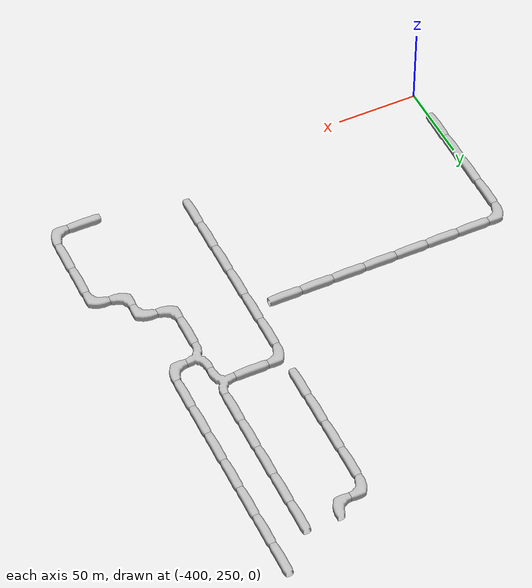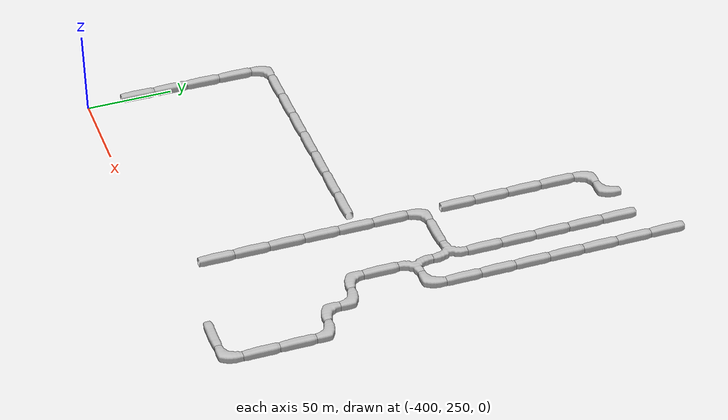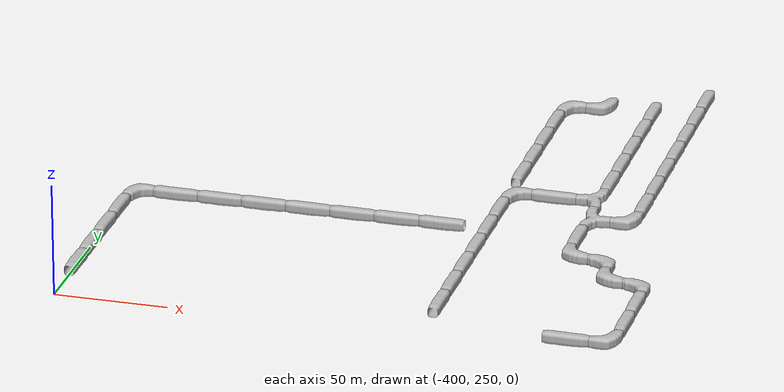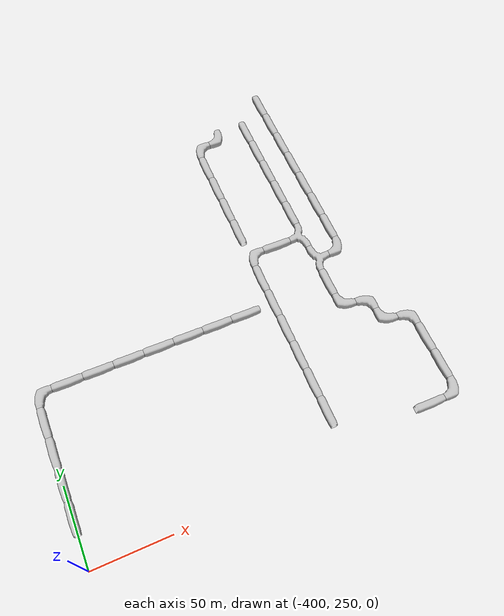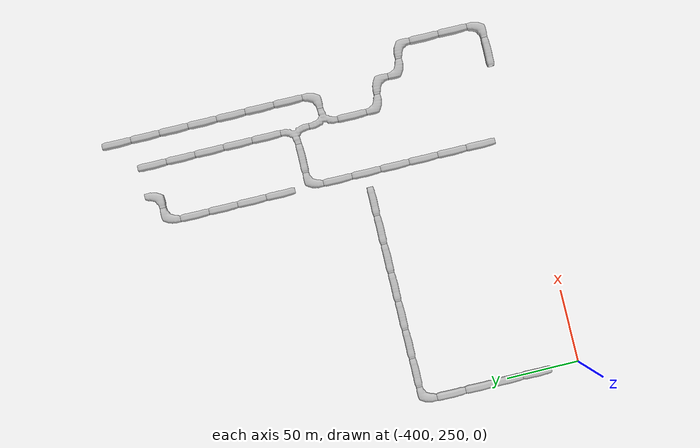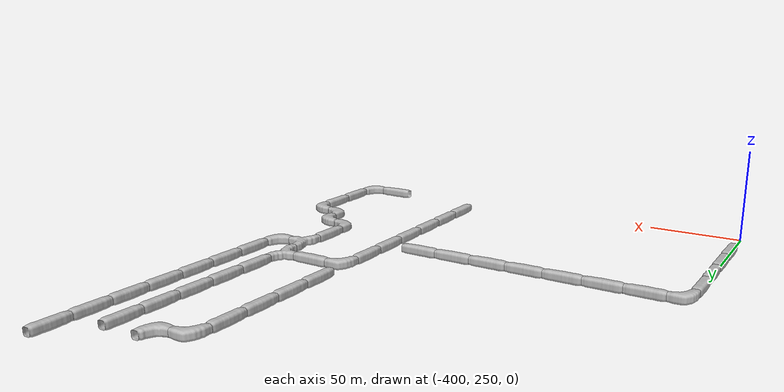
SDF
<sdf version="1.6">
 <world name="cave_8000_32">
  <include>
   <static>true</static>
   <name>cave_-20_14</name>
   <pose>-400 280 0 0 0 0.0</pose>
   <uri>model://cave_straight_20m</uri>
  </include>
  <include>
   <static>true</static>
   <name>cave_-20_15</name>
   <pose>-400 300 0 0 0 0.0</pose>
   <uri>model://cave_straight_20m</uri>
  </include>
  <include>
   <static>true</static>
   <name>cave_-20_16</name>
   <pose>-400 320 0 0 0 0.0</pose>
   <uri>model://cave_straight_20m</uri>
  </include>
  <include>
   <static>true</static>
   <name>cave_-20_17</name>
   <pose>-400 340 0 0 0 0.0</pose>
   <uri>model://cave_straight_20m</uri>
  </include>
  <include>
   <static>true</static>
   <name>cave_-20_18</name>
   <pose>-400 360 0 0 0 -1.5707963267948966</pose>
   <uri>model://cave_L_20m</uri>
  </include>
  <include>
   <static>true</static>
   <name>cave_-19_18</name>
   <pose>-380 360 0 0 0 1.5707963267948966</pose>
   <uri>model://cave_straight_20m</uri>
  </include>
  <include>
   <static>true</static>
   <name>cave_-18_18</name>
   <pose>-360 360 0 0 0 1.5707963267948966</pose>
   <uri>model://cave_straight_20m</uri>
  </include>
  <include>
   <static>true</static>
   <name>cave_-17_18</name>
   <pose>-340 360 0 0 0 1.5707963267948966</pose>
   <uri>model://cave_straight_20m</uri>
  </include>
  <include>
   <static>true</static>
   <name>cave_-16_18</name>
   <pose>-320 360 0 0 0 1.5707963267948966</pose>
   <uri>model://cave_straight_20m</uri>
  </include>
  <include>
   <static>true</static>
   <name>cave_-15_18</name>
   <pose>-300 360 0 0 0 1.5707963267948966</pose>
   <uri>model://cave_straight_20m</uri>
  </include>
  <include>
   <static>true</static>
   <name>cave_-14_18</name>
   <pose>-280 360 0 0 0 1.5707963267948966</pose>
   <uri>model://cave_straight_20m</uri>
  </include>
  <include>
   <static>true</static>
   <name>cave_-13_18</name>
   <pose>-260 360 0 0 0 1.5707963267948966</pose>
   <uri>model://cave_straight_20m</uri>
  </include>
  <include>
   <static>true</static>
   <name>cave_-9_13</name>
   <pose>-180 260 0 0 0 1.5707963267948966</pose>
   <uri>model://cave_straight_20m</uri>
  </include>
  <include>
   <static>true</static>
   <name>cave_-8_13</name>
   <pose>-160 260 0 0 0 1.5707963267948966</pose>
   <uri>model://cave_L_20m</uri>
  </include>
  <include>
   <static>true</static>
   <name>cave_-8_14</name>
   <pose>-160 280 0 0 0 0.0</pose>
   <uri>model://cave_straight_20m</uri>
  </include>
  <include>
   <static>true</static>
   <name>cave_-8_15</name>
   <pose>-160 300 0 0 0 0.0</pose>
   <uri>model://cave_straight_20m</uri>
  </include>
  <include>
   <static>true</static>
   <name>cave_-8_16</name>
   <pose>-160 320 0 0 0 3.141592653589793</pose>
   <uri>model://cave_L_20m</uri>
  </include>
  <include>
   <static>true</static>
   <name>cave_-9_16</name>
   <pose>-180 320 0 0 0 0.0</pose>
   <uri>model://cave_L_20m</uri>
  </include>
  <include>
   <static>true</static>
   <name>cave_-9_17</name>
   <pose>-180 340 0 0 0 3.141592653589793</pose>
   <uri>model://cave_L_20m</uri>
  </include>
  <include>
   <static>true</static>
   <name>cave_-10_17</name>
   <pose>-200 340 0 0 0 0.0</pose>
   <uri>model://cave_L_20m</uri>
  </include>
  <include>
   <static>true</static>
   <name>cave_-10_18</name>
   <pose>-200 360 0 0 0 0.0</pose>
   <uri>model://cave_straight_20m</uri>
  </include>
  <include>
   <static>true</static>
   <name>cave_-10_19</name>
   <pose>-200 380 0 0 0 -1.5707963267948966</pose>
   <uri>model://cave_3way_20m</uri>
  </include>
  <include>
   <static>true</static>
   <name>cave_-9_19</name>
   <pose>-180 380 0 0 0 1.5707963267948966</pose>
   <uri>model://cave_L_20m</uri>
  </include>
  <include>
   <static>true</static>
   <name>cave_-9_20</name>
   <pose>-180 400 0 0 0 0.0</pose>
   <uri>model://cave_straight_20m</uri>
  </include>
  <include>
   <static>true</static>
   <name>cave_-9_21</name>
   <pose>-180 420 0 0 0 0.0</pose>
   <uri>model://cave_straight_20m</uri>
  </include>
  <include>
   <static>true</static>
   <name>cave_-9_22</name>
   <pose>-180 440 0 0 0 0.0</pose>
   <uri>model://cave_straight_20m</uri>
  </include>
  <include>
   <static>true</static>
   <name>cave_-9_23</name>
   <pose>-180 460 0 0 0 0.0</pose>
   <uri>model://cave_straight_20m</uri>
  </include>
  <include>
   <static>true</static>
   <name>cave_-9_24</name>
   <pose>-180 480 0 0 0 0.0</pose>
   <uri>model://cave_straight_20m</uri>
  </include>
  <include>
   <static>true</static>
   <name>cave_-9_25</name>
   <pose>-180 500 0 0 0 0.0</pose>
   <uri>model://cave_straight_20m</uri>
  </include>
  <include>
   <static>true</static>
   <name>cave_-9_26</name>
   <pose>-180 520 0 0 0 0.0</pose>
   <uri>model://cave_straight_20m</uri>
  </include>
  <include>
   <static>true</static>
   <name>cave_-10_20</name>
   <pose>-200 400 0 0 0 1.5707963267948966</pose>
   <uri>model://cave_3way_20m</uri>
  </include>
  <include>
   <static>true</static>
   <name>cave_-11_20</name>
   <pose>-220 400 0 0 0 1.5707963267948966</pose>
   <uri>model://cave_straight_20m</uri>
  </include>
  <include>
   <static>true</static>
   <name>cave_-12_20</name>
   <pose>-240 400 0 0 0 -1.5707963267948966</pose>
   <uri>model://cave_L_20m</uri>
  </include>
  <include>
   <static>true</static>
   <name>cave_-12_19</name>
   <pose>-240 380 0 0 0 0.0</pose>
   <uri>model://cave_straight_20m</uri>
  </include>
  <include>
   <static>true</static>
   <name>cave_-12_18</name>
   <pose>-240 360 0 0 0 0.0</pose>
   <uri>model://cave_straight_20m</uri>
  </include>
  <include>
   <static>true</static>
   <name>cave_-12_17</name>
   <pose>-240 340 0 0 0 0.0</pose>
   <uri>model://cave_straight_20m</uri>
  </include>
  <include>
   <static>true</static>
   <name>cave_-12_16</name>
   <pose>-240 320 0 0 0 0.0</pose>
   <uri>model://cave_straight_20m</uri>
  </include>
  <include>
   <static>true</static>
   <name>cave_-12_15</name>
   <pose>-240 300 0 0 0 0.0</pose>
   <uri>model://cave_straight_20m</uri>
  </include>
  <include>
   <static>true</static>
   <name>cave_-12_14</name>
   <pose>-240 280 0 0 0 0.0</pose>
   <uri>model://cave_straight_20m</uri>
  </include>
  <include>
   <static>true</static>
   <name>cave_-10_21</name>
   <pose>-200 420 0 0 0 0.0</pose>
   <uri>model://cave_straight_20m</uri>
  </include>
  <include>
   <static>true</static>
   <name>cave_-10_22</name>
   <pose>-200 440 0 0 0 0.0</pose>
   <uri>model://cave_straight_20m</uri>
  </include>
  <include>
   <static>true</static>
   <name>cave_-10_23</name>
   <pose>-200 460 0 0 0 0.0</pose>
   <uri>model://cave_straight_20m</uri>
  </include>
  <include>
   <static>true</static>
   <name>cave_-10_24</name>
   <pose>-200 480 0 0 0 0.0</pose>
   <uri>model://cave_straight_20m</uri>
  </include>
  <include>
   <static>true</static>
   <name>cave_-10_25</name>
   <pose>-200 500 0 0 0 0.0</pose>
   <uri>model://cave_straight_20m</uri>
  </include>
  <include>
   <static>true</static>
   <name>cave_-11_25</name>
   <pose>-220 500 0 0 0 1.5707963267948966</pose>
   <uri>model://cave_L_20m</uri>
  </include>
  <include>
   <static>true</static>
   <name>cave_-12_25</name>
   <pose>-240 500 0 0 0 -1.5707963267948966</pose>
   <uri>model://cave_L_20m</uri>
  </include>
  <include>
   <static>true</static>
   <name>cave_-12_24</name>
   <pose>-240 480 0 0 0 0.0</pose>
   <uri>model://cave_straight_20m</uri>
  </include>
  <include>
   <static>true</static>
   <name>cave_-12_23</name>
   <pose>-240 460 0 0 0 0.0</pose>
   <uri>model://cave_straight_20m</uri>
  </include>
  <include>
   <static>true</static>
   <name>cave_-12_22</name>
   <pose>-240 440 0 0 0 0.0</pose>
   <uri>model://cave_straight_20m</uri>
  </include>
  <include>
   <static>true</static>
   <name>cave_-12_21</name>
   <pose>-240 420 0 0 0 0.0</pose>
   <uri>model://cave_straight_20m</uri>
  </include>
 </world>
</sdf>
